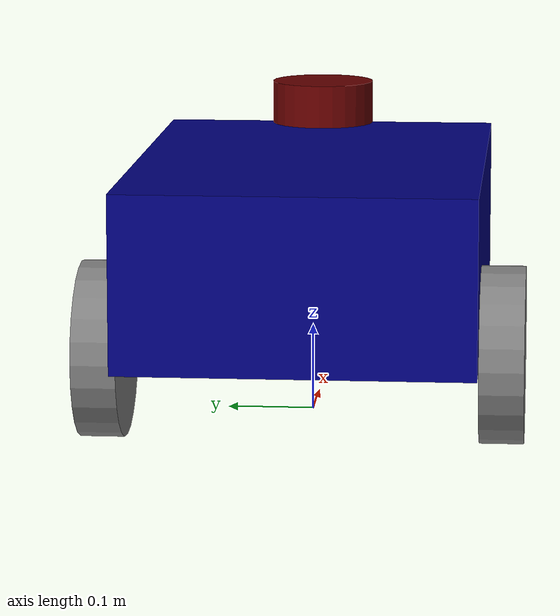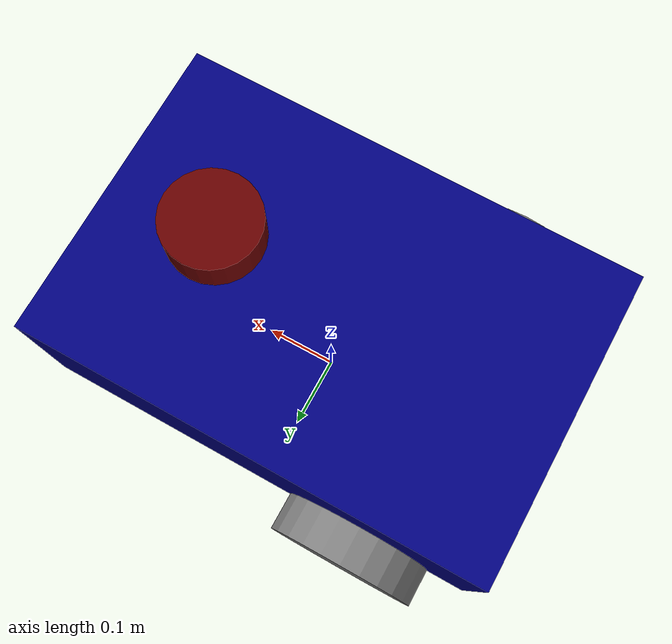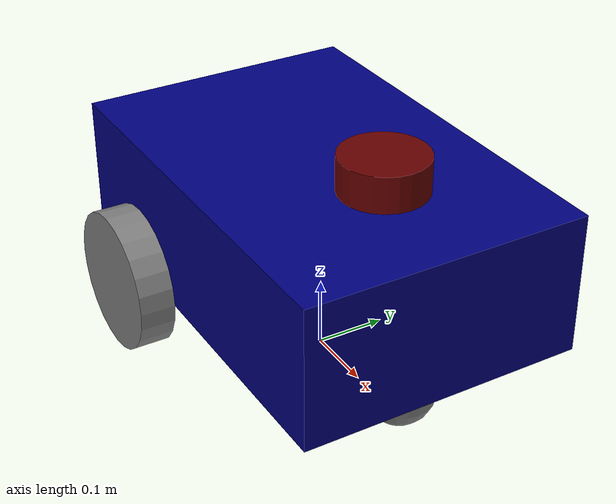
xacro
<?xml version="1.0"?>

<robot name="my_robot" xmlns:xacro="http://www.ros.org/wiki/xacro" >   <!--  for any URDF we need to make this - name of our robot   -->

    <xacro:include filename= "material.xacro" />

    <xacro:include filename="inertia.xacro" />

    <xacro:include filename = "mobile_base.xacro" />

    <xacro:include filename = "mobile_base_gazebo.xacro"/>

    <xacro:include filename = "lider.xacro" />

    <xacro:include filename="imu.xacro" />

<!--  in URDF its use metric systerm (m(meter) to measure distance)  -->

<!-- making custom variables (xacro propertices)   -->

</robot>

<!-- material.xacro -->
<robot xmlns:xacro="http://www.ros.org/wiki/xacro" >

    <!-- making material to change the color of links   -->
    <material name="green">
        <!-- a= transperancy , values are between 0 and 1  -->
        <color rgba="0 0.5 0 1" />
    </material>

    <material name="blue">
        <color rgba="0 0 0.5 1" />
    </material>

    <material name="red">
        <color rgba="0.4 0 0 1" />
    </material>

    <material name="gray">
        <color rgba="0.5 0.5 0.5 1" />
    </material>

    <material name ="orange">
        <color rgba="1 0.5 0 1" />
    </material>

    <material name ="yellow">
        <color rgba="1 1 0 1" />
    </material>

</robot>

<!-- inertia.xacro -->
<robot xmlns:xacro="http://www.ros.org/wiki/xacro" >

    <xacro:macro name="box_inertia" params="m l w h xyz rpy">
        <inertial>
            <origin xyz="${xyz}" rpy="${rpy}" />
            <mass value="${m}"/>

            <inertia ixx="${(m/12) * (h*h + l*l)}" ixy="0" ixz="0"
                    iyy="${(m/12) * (w*w + l*l)}" iyz="0"
                    izz="${(m/12) * (w*w + h*h)}" />

        </inertial>

    </xacro:macro>

    <xacro:macro name="cylinder_inertia" params="m r h xyz rpy">
        <inertial>
            <origin xyz="${xyz}" rpy="${rpy}" />
            <mass value="${m}" />

            <inertia ixx="${(m/12) * (3*r*r + h*h)}" ixy="0" ixz="0"
                    iyy="${(m/12) * (3*r*r + h*h)}" iyz="0"
                    izz= "${(m/2) * (r*r)}" />

        </inertial>
    </xacro:macro>

    <xacro:macro name="sphere_inertia" params="m r  xyz rpy">
        <inertial>
            <origin xyz="${xyz}" rpy="${rpy}" />
            <mass value="${m}" />

            <inertia ixx="${(2/5)*m*r*r}" ixy="0" ixz="0"
                    iyy="${(2/5)*m*r*r}" iyz="0"
                    izz= "${(2/5)*m*r*r}" />

        </inertial>

    </xacro:macro>

</robot>

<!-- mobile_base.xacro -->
<robot xmlns:xacro="http://www.ros.org/wiki/xacro" >

<xacro:property name= "base_length" value="0.6" />
<xacro:property name= "base_width" value="0.4" />
<xacro:property name= "base_height" value="0.2" />
<xacro:property name= "wheel_radius" value="0.1" />
<xacro:property name= "wheel_length" value="0.05" />

<xacro:macro name="wheel_link" params="prefix" >

    <link name="${prefix}_wheel_link">

        <visual>
            <geometry>
                <cylinder length="${wheel_length}" radius="${wheel_radius}" />

            </geometry>

            <origin xyz= "0 0 0" rpy="${pi/ 2.0} 0 0" />
            <material name="gray" />

        </visual>

        <collision>
            <geometry>
                <cylinder length="${wheel_length}" radius="${wheel_radius}" />

            </geometry>

            <origin xyz= "0 0 0" rpy="${pi/ 2.0} 0 0" />
        </collision>

        <xacro:cylinder_inertia m="1.0" r="${wheel_radius}" h="${2 * wheel_length}" xyz="0 0 0" rpy="${pi/ 2.0} 0 0" />
    </link>

</xacro:macro>

<!--  everything write on between these 2   -->

<!--making the links   -->
    <link name = "base_link">
        <visual>
            <geometry>
                <box size ="${base_length} ${base_width} ${base_height}" />
            </geometry>

            <origin xyz ="0 0 ${base_height/2.0}" rpy="0 0 0" />   <!--rpy = roll-x pitch-y yaw-z   -->
            <material name="blue"/>
        </visual>
        <!-- defining the inertia of base  -->
        <xacro:box_inertia w="${base_width}" h="${base_height}" l="${2 * base_length}" m="5.0" xyz="0 0 ${base_height/2.0}" rpy="0 0 0"   />

        <collision>
            <geometry>
                <box size ="${base_length} ${base_width} ${base_height}" />
            </geometry>
            <origin xyz ="0 0 ${base_height/2.0}" rpy="0 0 0" />   <!--rpy = roll-x pitch-y yaw-z   -->

        </collision>

   <!-- box mass = 5 kg   -->

    </link>

    <!--to call the function  -->

    <xacro:wheel_link prefix="right" />
    <xacro:wheel_link prefix="left" />

    <link name="caster_wheel_link">
        <visual>
            <geometry>
                <sphere radius="${wheel_radius/2.0}" />  <!-- in here wheel length is equal to radius of caster wheel  -->
            </geometry>
            <origin xyz="0 0 0" rpy="0 0 0" />

            <material name="gray" />

        </visual>

        <collision>

           <geometry>

                <sphere radius="${wheel_radius/2.0}" />  <!-- in here wheel length is equal to radius of caster wheel  -->
            </geometry>
            <origin xyz="0 0 0" rpy="0 0 0" />

        </collision>

        <xacro:sphere_inertia m="0.5" r="${2* wheel_radius/2.0}"  xyz="0 0 0" rpy="0 0 0" />

    </link>

    <link name="base_footprint" >
        <!-- empty link for lift up the robot form the ground -->
    </link>

<!--making the joints  -->
    <joint name="base_joint"  type="fixed">
        <parent link="base_footprint" />
        <child link="base_link" />

        <origin xyz="0 0 ${wheel_radius}" rpy="0 0 0" />
    </joint>

    <joint name="base_right_wheel_joint"  type="continuous">
        <parent link="base_link" />
        <child link="right_wheel_link" />

        <origin xyz="-${base_length / 4.0} -${base_width/2.0 + wheel_length/2.0} 0" rpy="0 0 0" />
        <axis xyz="0 1 0" />
    </joint>

    <joint name="base_left_wheel_joint"  type="continuous">
        <parent link="base_link" />
        <child link="left_wheel_link" />

        <origin xyz="-${base_length / 4.0} ${base_width/2.0 + wheel_length/2.0} 0" rpy="0 0 0" />
        <axis xyz="0 1 0" />
    </joint>

    <joint name="base_caster_wheel_joint"  type="fixed">
        <parent link="base_link" />
        <child link="caster_wheel_link" />

        <origin xyz="${base_length/3.0} 0 -${wheel_radius/2.0}" rpy="0 0 0" />
    </joint>

</robot>

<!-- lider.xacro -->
<robot xmlns:xacro="http://www.ros.org/wiki/xacro" >

    <link name="lider_link" >
        <visual>
            <geometry>
                <cylinder radius="0.06" length="0.05"/>
            </geometry>

        <material name="red" />

        <origin xyz="0.0 0.0 0.025" rpy="0.0 0.0 0.0"/>

        </visual>
        <collision>
            <geometry>
                <cylinder radius="0.06" length="0.05"/>
            </geometry>

        </collision>

    </link>

    <joint name="base_camara_joint" type="fixed" >
        <parent link="base_link" />
        <child link="lider_link" />
        <origin xyz="${base_length/4.0} 0 ${base_height + 0.02}" rpy="0 0 0" />
    </joint>

    <gazebo reference="lider_link">
        <material>Gazebo/Red</material>

        <sensor name="laser" type="ray">
            <pose> 0 0 0.03 0 0 0 </pose>
            <visualize>false</visualize>
            <update_rate>10</update_rate>
            <ray>
                <scan>
                    <horizontal>
                        <samples>360</samples>
                        <min_angle>-3.14</min_angle>
                        <max_angle>3.14</max_angle>
                    </horizontal>
                </scan>
                <range>
                    <min>0.3</min>
                    <max>12</max>
                </range>
            </ray>
            <plugin name="laser_controller" filename="libgazebo_ros_ray_sensor.so">
                <ros>
                    <argument>~/out:=scan</argument>
                </ros>
                <output_type>sensor_msgs/LaserScan</output_type>
                <frame_name>lider_link</frame_name>
            </plugin>
        </sensor>
    </gazebo>

</robot>

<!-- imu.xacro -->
<robot xmlns:xacro="http://www.ros.org/wiki/xacro" >

<link name="imu_link">
  <visual>
    <geometry>
      <box size="0.065 0.05 0.025"/>
    </geometry>
    <material name="green"/>
    <origin xyz ="0 0 0" rpy="0 0 0" />
  </visual>

  <collision>
    <geometry>
      <box size="0.065 0.05 0.025"/>
    </geometry>
  </collision>

  <xacro:box_inertia w="0.065" h="0.025" l="0.05" m="1.0" xyz="0 0 0" rpy="0 0 0"   />
</link>

<joint name="base_imu_joint" type="fixed">
  <parent link="base_link"/>
  <child link="imu_link"/>
  <origin xyz="0 0 0.04"/>
</joint>

 <gazebo reference="imu_link">
  <sensor name="imu_sensor" type="imu">
   <plugin filename="libgazebo_ros_imu_sensor.so" name="imu_plugin">

      <ros>
        <namespace>/demo</namespace>
        <remapping>~/out:=imu</remapping>
      </ros>

      <initial_orientation_as_reference>false</initial_orientation_as_reference>
    </plugin>
    <always_on>true</always_on>
    <update_rate>100</update_rate>
    <visualize>true</visualize>
    <imu>
      <angular_velocity>
        <x>
          <noise type="gaussian">
            <mean>0.0</mean>
            <stddev>2e-4</stddev>
            <bias_mean>0.0000075</bias_mean>
            <bias_stddev>0.0000008</bias_stddev>
          </noise>
        </x>
        <y>
          <noise type="gaussian">
            <mean>0.0</mean>
            <stddev>2e-4</stddev>
            <bias_mean>0.0000075</bias_mean>
            <bias_stddev>0.0000008</bias_stddev>
          </noise>
        </y>
        <z>
          <noise type="gaussian">
            <mean>0.0</mean>
            <stddev>2e-4</stddev>
            <bias_mean>0.0000075</bias_mean>
            <bias_stddev>0.0000008</bias_stddev>
          </noise>
        </z>
      </angular_velocity>
      <linear_acceleration>
        <x>
          <noise type="gaussian">
            <mean>0.0</mean>
            <stddev>1.7e-2</stddev>
            <bias_mean>0.1</bias_mean>
            <bias_stddev>0.001</bias_stddev>
          </noise>
        </x>
        <y>
          <noise type="gaussian">
            <mean>0.0</mean>
            <stddev>1.7e-2</stddev>
            <bias_mean>0.1</bias_mean>
            <bias_stddev>0.001</bias_stddev>
          </noise>
        </y>
        <z>
          <noise type="gaussian">
            <mean>0.0</mean>
            <stddev>1.7e-2</stddev>
            <bias_mean>0.1</bias_mean>
            <bias_stddev>0.001</bias_stddev>
          </noise>
        </z>
      </linear_acceleration>
    </imu>
  </sensor>
</gazebo>

</robot>
